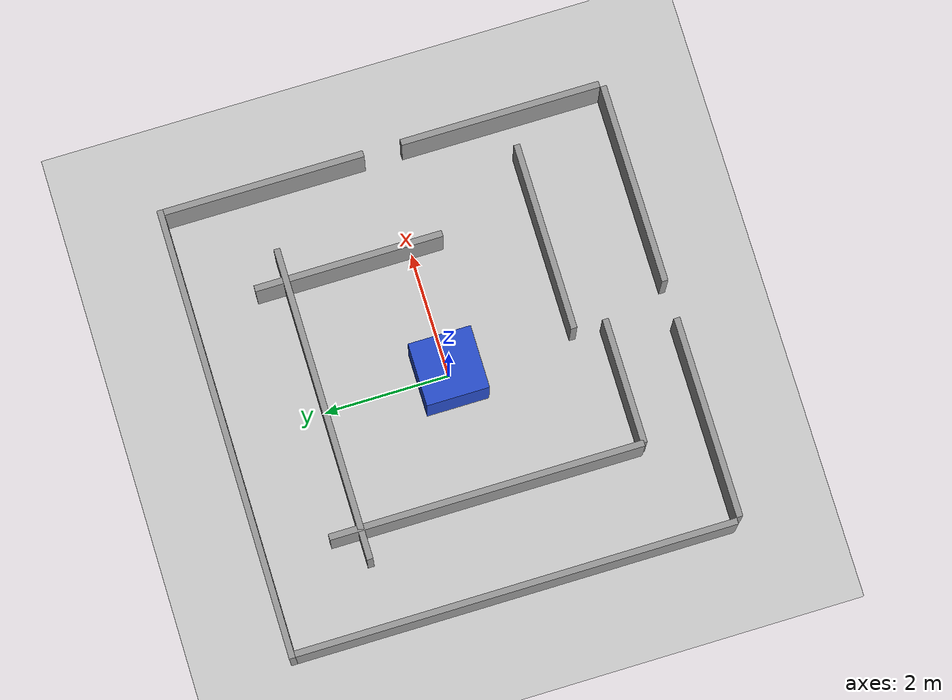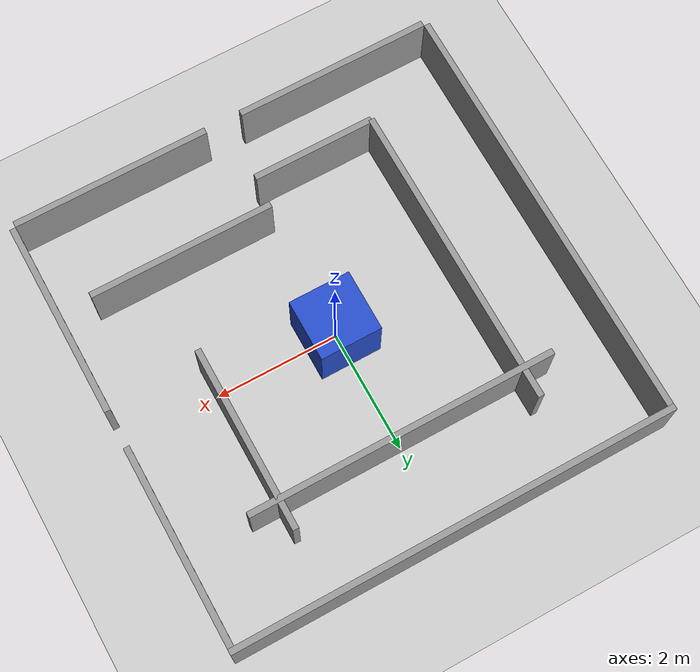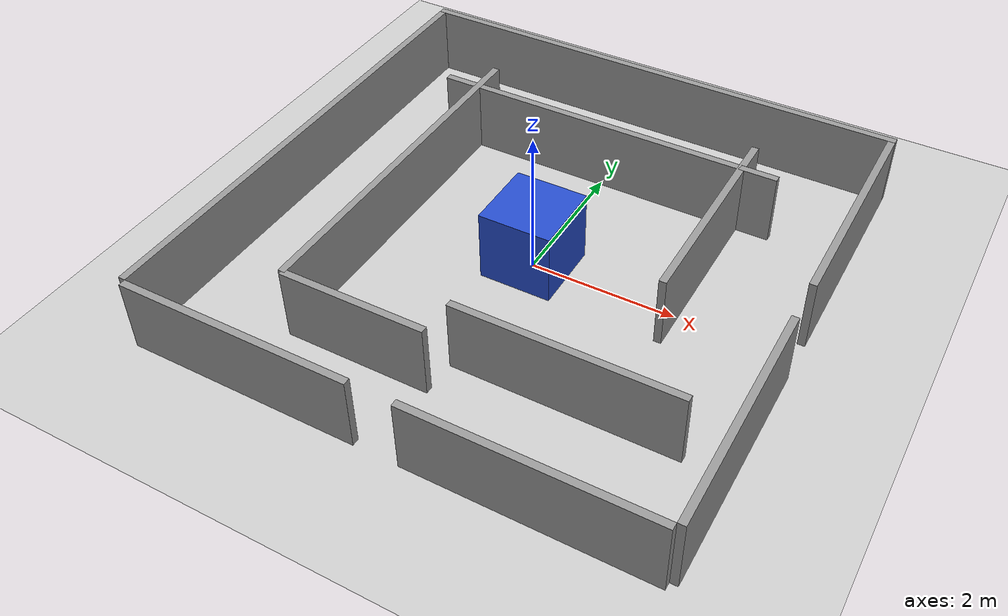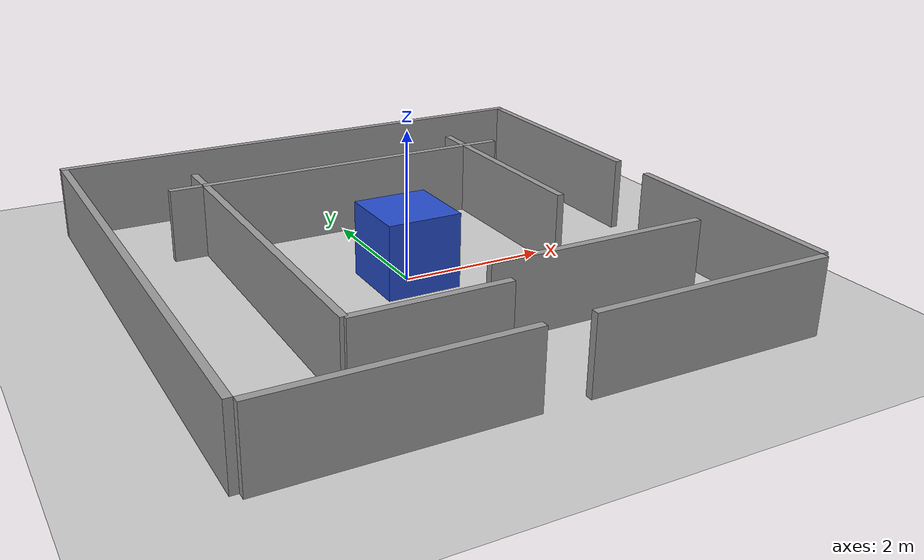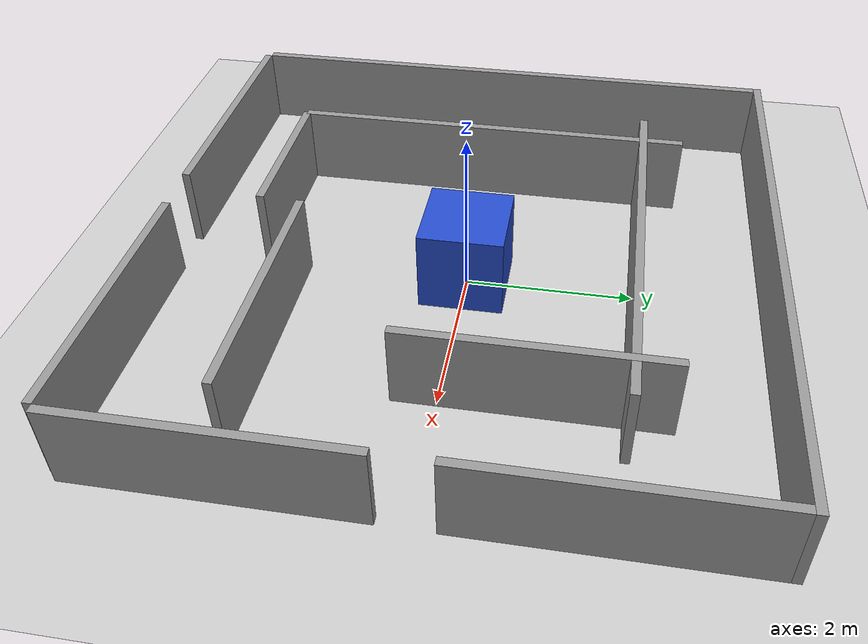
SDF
<?xml version="1.0" ?>
<sdf version='1.7'>
  <world name='large_maze_world'>
    <!-- Basic lighting -->
    <include>
      <uri>model://sun</uri>
    </include>

    <!-- Ground Plane -->
    <include>
      <uri>model://ground_plane</uri>
    </include>

    <!-- Outer Walls for approx 7x7m maze -->
    <!-- Wall thickness 0.1m, height 1.0m -->
    <!-- Maze area approx X: -3.5m to 3.5m, Y: -3.5m to 3.5m -->
    <!-- Poses are X Y Z ROLL PITCH YAW. Z is 0.5 for 1m high walls. -->

    <!-- North Wall (Solid) -->
    <model name='north_wall'>
      <static>true</static>
      <pose>0 3.55 0.5 0 0 0</pose> <!-- Centered on X, at Y=+3.55 (outer edge) -->
      <link name='link'>
        <collision name='collision'><geometry><box><size>7.2 0.1 1.0</size></box></geometry></collision> <!-- Width 7.2 = 7.0 (maze) + 0.1*2 (thickness) -->
        <visual name='visual'><geometry><box><size>7.2 0.1 1.0</size></box></geometry>
          <material><script><uri>file://media/materials/scripts/gazebo.material</uri><name>Gazebo/Grey</name></script></material>
        </visual>
      </link>
    </model>

    <!-- South Wall (with Entrance) -->
    <!-- Entrance: y=-3.55, x from -0.3 to 0.3 (0.6m wide opening) -->
    <!-- Total width of south side is 7.0m. Segments are (7.0 - 0.6)/2 = 3.2m each -->
    <model name='south_wall_left_segment'>
      <static>true</static>
      <pose>-1.9 -3.55 0.5 0 0 0</pose> <!-- Center of segment: -3.5 (edge) + 3.2/2 = -1.9 -->
      <link name='link'>
        <collision name='collision'><geometry><box><size>3.2 0.1 1.0</size></box></geometry></collision>
        <visual name='visual'><geometry><box><size>3.2 0.1 1.0</size></box></geometry>
          <material><script><uri>file://media/materials/scripts/gazebo.material</uri><name>Gazebo/Grey</name></script></material>
        </visual>
      </link>
    </model>
    <model name='south_wall_right_segment'>
      <static>true</static>
      <pose>1.9 -3.55 0.5 0 0 0</pose> <!-- Center of segment: 3.5 (edge) - 3.2/2 = 1.9 -->
      <link name='link'>
        <collision name='collision'><geometry><box><size>3.2 0.1 1.0</size></box></geometry></collision>
        <visual name='visual'><geometry><box><size>3.2 0.1 1.0</size></box></geometry>
          <material><script><uri>file://media/materials/scripts/gazebo.material</uri><name>Gazebo/Grey</name></script></material>
        </visual>
      </link>
    </model>

    <!-- West Wall (Solid) -->
    <model name='west_wall'>
      <static>true</static>
      <pose>-3.55 0 0.5 0 0 0</pose> <!-- Centered on Y, at X=-3.55 (outer edge) -->
      <link name='link'>
        <collision name='collision'><geometry><box><size>0.1 7.0 1.0</size></box></geometry></collision> <!-- Height 7.0 (maze inner dimension) -->
        <visual name='visual'><geometry><box><size>0.1 7.0 1.0</size></box></geometry>
          <material><script><uri>file://media/materials/scripts/gazebo.material</uri><name>Gazebo/Grey</name></script></material>
        </visual>
      </link>
    </model>

    <!-- East Wall (with Exit) -->
    <!-- Exit: x=3.55, y from -0.3 to 0.3 (0.6m wide opening) -->
    <!-- Total height of east side is 7.0m. Segments are (7.0 - 0.6)/2 = 3.2m each -->
    <model name='east_wall_bottom_segment'>
      <static>true</static>
      <pose>3.55 -1.9 0.5 0 0 0</pose> <!-- Center of segment: -3.5 (edge) + 3.2/2 = -1.9 -->
      <link name='link'>
        <collision name='collision'><geometry><box><size>0.1 3.2 1.0</size></box></geometry></collision>
        <visual name='visual'><geometry><box><size>0.1 3.2 1.0</size></box></geometry>
          <material><script><uri>file://media/materials/scripts/gazebo.material</uri><name>Gazebo/Grey</name></script></material>
        </visual>
      </link>
    </model>
    <model name='east_wall_top_segment'>
      <static>true</static>
      <pose>3.55 1.9 0.5 0 0 0</pose> <!-- Center of segment: 3.5 (edge) - 3.2/2 = 1.9 -->
      <link name='link'>
        <collision name='collision'><geometry><box><size>0.1 3.2 1.0</size></box></geometry></collision>
        <visual name='visual'><geometry><box><size>0.1 3.2 1.0</size></box></geometry>
          <material><script><uri>file://media/materials/scripts/gazebo.material</uri><name>Gazebo/Grey</name></script></material>
        </visual>
      </link>
    </model>

    <!-- Central Obstacle (the blue square) -->
    <model name='central_obstacle'>
      <static>true</static>
      <pose>0 0 0.5 0 0 0</pose> <!-- Centered at origin -->
      <link name='link'>
        <collision name='collision'><geometry><box><size>1.0 1.0 1.0</size></box></geometry></collision>
        <visual name='visual'><geometry><box><size>1.0 1.0 1.0</size></box></geometry>
          <material><script><uri>file://media/materials/scripts/gazebo.material</uri><name>Gazebo/Blue</name></script></material>
        </visual>
      </link>
    </model>

    <!-- New Internal Walls for 7x7 maze complexity -->
    <model name='internal_wall_A'> <!-- Long E-W wall north of center -->
      <static>true</static>
      <pose>0 2.0 0.5 0 0 0</pose>
      <link name='link'>
        <collision name='collision'><geometry><box><size>5.0 0.1 1.0</size></box></geometry></collision>
        <visual name='visual'><geometry><box><size>5.0 0.1 1.0</size></box></geometry>
          <material><script><uri>file://media/materials/scripts/gazebo.material</uri><name>Gazebo/Grey</name></script></material>
        </visual>
      </link>
    </model>

    <model name='internal_wall_B'> <!-- Long N-S wall west of center -->
      <static>true</static>
      <pose>-2.0 0 0.5 0 0 0</pose>
      <link name='link'>
        <collision name='collision'><geometry><box><size>0.1 5.0 1.0</size></box></geometry></collision>
        <visual name='visual'><geometry><box><size>0.1 5.0 1.0</size></box></geometry>
          <material><script><uri>file://media/materials/scripts/gazebo.material</uri><name>Gazebo/Grey</name></script></material>
        </visual>
      </link>
    </model>

    <model name='internal_wall_C'> <!-- Shorter E-W wall south-east -->
      <static>true</static>
      <pose>1.5 -2.0 0.5 0 0 0</pose>
      <link name='link'>
        <collision name='collision'><geometry><box><size>3.0 0.1 1.0</size></box></geometry></collision>
        <visual name='visual'><geometry><box><size>3.0 0.1 1.0</size></box></geometry>
          <material><script><uri>file://media/materials/scripts/gazebo.material</uri><name>Gazebo/Grey</name></script></material>
        </visual>
      </link>
    </model>

    <model name='internal_wall_D'> <!-- Shorter N-S wall north-east -->
      <static>true</static>
      <pose>2.0 1.0 0.5 0 0 0</pose> <!-- Adjusted Y to connect better -->
      <link name='link'>
        <collision name='collision'><geometry><box><size>0.1 3.0 1.0</size></box></geometry></collision> <!-- Adjusted length -->
        <visual name='visual'><geometry><box><size>0.1 3.0 1.0</size></box></geometry>
          <material><script><uri>file://media/materials/scripts/gazebo.material</uri><name>Gazebo/Grey</name></script></material>
        </visual>
      </link>
    </model>

    <model name='internal_wall_E'> <!-- Small E-W wall near entrance -->
      <static>true</static>
      <pose>-1.0 -2.5 0.5 0 0 0</pose> <!-- Adjusted X for better placement -->
      <link name='link'>
        <collision name='collision'><geometry><box><size>2.0 0.1 1.0</size></box></geometry></collision> <!-- Adjusted length -->
        <visual name='visual'><geometry><box><size>2.0 0.1 1.0</size></box></geometry>
          <material><script><uri>file://media/materials/scripts/gazebo.material</uri><name>Gazebo/Grey</name></script></material>
        </visual>
      </link>
    </model>

  </world>
</sdf>
